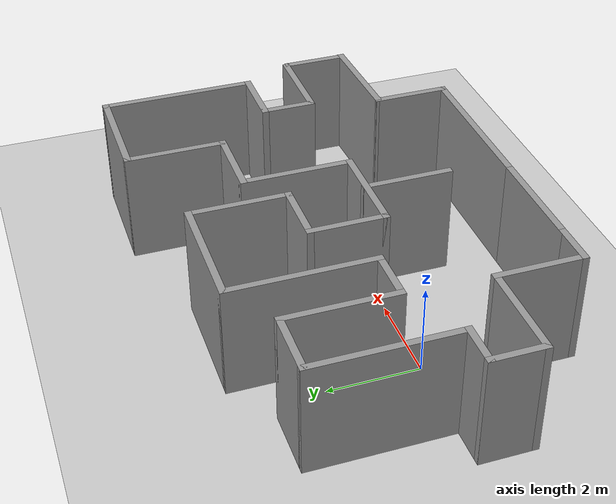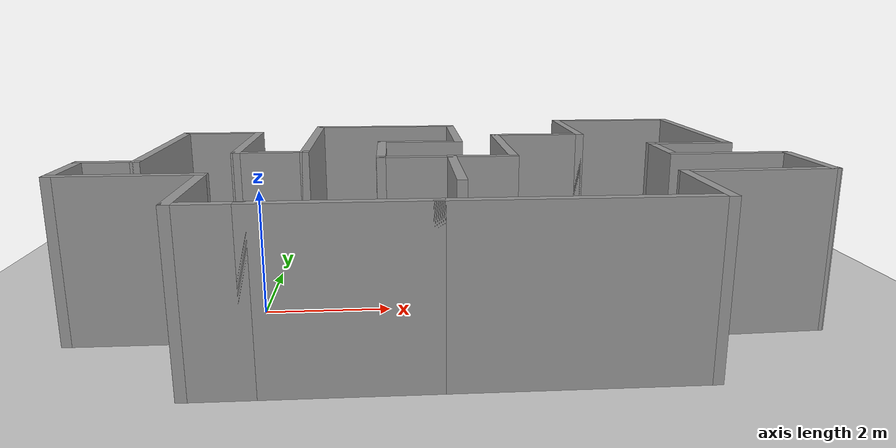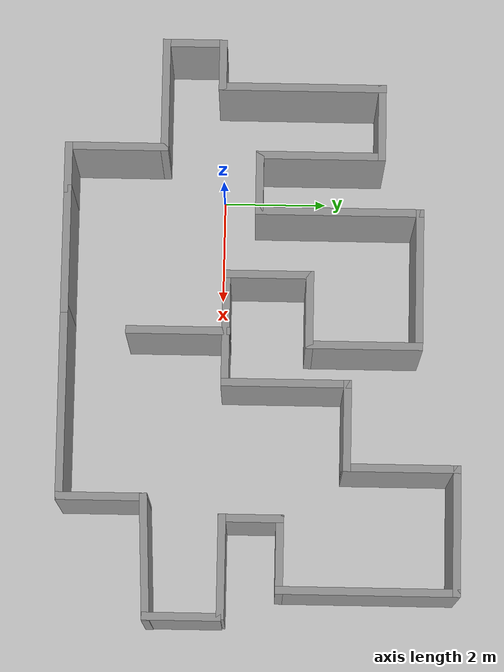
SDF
<sdf version="1.4">
  <world name="default">

    <scene>
      <ambient>0.4 0.4 0.4 1</ambient>
      <background>0.7 0.7 0.7 1</background>
      <shadows>true</shadows>
    </scene>

    <!-- A global light source -->
    <include>
      <uri>model://sun</uri>
    </include>

    <!-- A ground plane -->
    <include>
      <uri>model://ground_plane</uri>
    </include>

    <physics type="ode">
      <real_time_update_rate>1000.0</real_time_update_rate>
      <max_step_size>0.001</max_step_size>
      <real_time_factor>1</real_time_factor>
      <ode>
        <solver>
          <type>quick</type>
          <iters>150</iters>
          <precon_iters>0</precon_iters>
          <sor>1.400000</sor>
          <use_dynamic_moi_rescaling>1</use_dynamic_moi_rescaling>
        </solver>
        <constraints>
          <cfm>0.00001</cfm>
          <erp>0.2</erp>
          <contact_max_correcting_vel>2000.000000</contact_max_correcting_vel>
          <contact_surface_layer>0.01000</contact_surface_layer>
        </constraints>
      </ode>
    </physics>

    <model name='my_world'>
    <pose frame=''>2.92324 0.765 0 0 -0 0</pose>
    <link name='Wall_0'>
      <collision name='Wall_0_Collision'>
        <geometry>
          <box>
            <size>1 0.15 2.5</size>
          </box>
        </geometry>
        <pose frame=''>0 0 1.25 0 -0 0</pose>
      </collision>
      <visual name='Wall_0_Visual'>
        <pose frame=''>0 0 1.25 0 -0 0</pose>
        <geometry>
          <box>
            <size>1 0.15 2.5</size>
          </box>
        </geometry>
        <material>
          <script>
            <uri>file://media/materials/scripts/gazebo.material</uri>
            <name>Gazebo/Grey</name>
          </script>
          <ambient>1 1 1 1</ambient>
        </material>
        <meta>
          <layer>0</layer>
        </meta>
      </visual>
      <pose frame=''>-3.06824 -3.775 0 0 -0 3.14159</pose>
    </link>
    <link name='Wall_1'>
      <collision name='Wall_1_Collision'>
        <geometry>
          <box>
            <size>2 0.15 2.5</size>
          </box>
        </geometry>
        <pose frame=''>0 0 1.25 0 -0 0</pose>
      </collision>
      <visual name='Wall_1_Visual'>
        <pose frame=''>0 0 1.25 0 -0 0</pose>
        <geometry>
          <box>
            <size>2 0.15 2.5</size>
          </box>
        </geometry>
        <material>
          <script>
            <uri>file://media/materials/scripts/gazebo.material</uri>
            <name>Gazebo/Grey</name>
          </script>
          <ambient>1 1 1 1</ambient>
        </material>
        <meta>
          <layer>0</layer>
        </meta>
      </visual>
      <pose frame=''>-3.49324 -2.85 0 0 -0 1.5708</pose>
    </link>
    <link name='Wall_11'>
      <collision name='Wall_11_Collision'>
        <geometry>
          <box>
            <size>1.25 0.15 2.5</size>
          </box>
        </geometry>
        <pose frame=''>0 0 1.25 0 -0 0</pose>
      </collision>
      <visual name='Wall_11_Visual'>
        <pose frame=''>0 0 1.25 0 -0 0</pose>
        <geometry>
          <box>
            <size>1.25 0.15 2.5</size>
          </box>
        </geometry>
        <material>
          <script>
            <uri>file://media/materials/scripts/gazebo.material</uri>
            <name>Gazebo/Grey</name>
          </script>
          <ambient>1 1 1 1</ambient>
        </material>
        <meta>
          <layer>0</layer>
        </meta>
      </visual>
      <pose frame=''>-2.82324 -0.075 0 0 -0 0</pose>
    </link>
    <link name='Wall_12'>
      <collision name='Wall_12_Collision'>
        <geometry>
          <box>
            <size>3.25 0.15 2.5</size>
          </box>
        </geometry>
        <pose frame=''>0 0 1.25 0 -0 0</pose>
      </collision>
      <visual name='Wall_12_Visual'>
        <pose frame=''>0 0 1.25 0 -0 0</pose>
        <geometry>
          <box>
            <size>3.25 0.15 2.5</size>
          </box>
        </geometry>
        <material>
          <script>
            <uri>file://media/materials/scripts/gazebo.material</uri>
            <name>Gazebo/Grey</name>
          </script>
          <ambient>1 1 1 1</ambient>
        </material>
        <meta>
          <layer>0</layer>
        </meta>
      </visual>
      <pose frame=''>-2.27324 1.475 0 0 -0 1.5708</pose>
    </link>
    <link name='Wall_13'>
      <collision name='Wall_13_Collision'>
        <geometry>
          <box>
            <size>2.75 0.15 2.5</size>
          </box>
        </geometry>
        <pose frame=''>0 0 1.25 0 -0 0</pose>
      </collision>
      <visual name='Wall_13_Visual'>
        <pose frame=''>0 0 1.25 0 -0 0</pose>
        <geometry>
          <box>
            <size>2.75 0.15 2.5</size>
          </box>
        </geometry>
        <material>
          <script>
            <uri>file://media/materials/scripts/gazebo.material</uri>
            <name>Gazebo/Grey</name>
          </script>
          <ambient>1 1 1 1</ambient>
        </material>
        <meta>
          <layer>0</layer>
        </meta>
      </visual>
      <pose frame=''>-0.973242 3.025 0 0 -0 0</pose>
    </link>
    <link name='Wall_14'>
      <collision name='Wall_14_Collision'>
        <geometry>
          <box>
            <size>2.25 0.15 2.5</size>
          </box>
        </geometry>
        <pose frame=''>0 0 1.25 0 -0 0</pose>
      </collision>
      <visual name='Wall_14_Visual'>
        <pose frame=''>0 0 1.25 0 -0 0</pose>
        <geometry>
          <box>
            <size>2.25 0.15 2.5</size>
          </box>
        </geometry>
        <material>
          <script>
            <uri>file://media/materials/scripts/gazebo.material</uri>
            <name>Gazebo/Grey</name>
          </script>
          <ambient>1 1 1 1</ambient>
        </material>
        <meta>
          <layer>0</layer>
        </meta>
      </visual>
      <pose frame=''>0.326758 1.975 0 0 -0 -1.5708</pose>
    </link>
    <link name='Wall_15'>
      <collision name='Wall_15_Collision'>
        <geometry>
          <box>
            <size>1.5 0.15 2.5</size>
          </box>
        </geometry>
        <pose frame=''>0 0 1.25 0 -0 0</pose>
      </collision>
      <visual name='Wall_15_Visual'>
        <pose frame=''>0 0 1.25 0 -0 0</pose>
        <geometry>
          <box>
            <size>1.5 0.15 2.5</size>
          </box>
        </geometry>
        <material>
          <script>
            <uri>file://media/materials/scripts/gazebo.material</uri>
            <name>Gazebo/Grey</name>
          </script>
          <ambient>1 1 1 1</ambient>
        </material>
        <meta>
          <layer>0</layer>
        </meta>
      </visual>
      <pose frame=''>-0.348242 0.925 0 0 -0 3.14159</pose>
    </link>
    <link name='Wall_16'>
      <collision name='Wall_16_Collision'>
        <geometry>
          <box>
            <size>1.75 0.15 2.5</size>
          </box>
        </geometry>
        <pose frame=''>0 0 1.25 0 -0 0</pose>
      </collision>
      <visual name='Wall_16_Visual'>
        <pose frame=''>0 0 1.25 0 -0 0</pose>
        <geometry>
          <box>
            <size>1.75 0.15 2.5</size>
          </box>
        </geometry>
        <material>
          <script>
            <uri>file://media/materials/scripts/gazebo.material</uri>
            <name>Gazebo/Grey</name>
          </script>
          <ambient>1 1 1 1</ambient>
        </material>
        <meta>
          <layer>0</layer>
        </meta>
      </visual>
      <pose frame=''>-1.02324 0.125 0 0 -0 -1.5708</pose>
    </link>
    <link name='Wall_17'>
      <collision name='Wall_17_Collision'>
        <geometry>
          <box>
            <size>2.25 0.15 2.5</size>
          </box>
        </geometry>
        <pose frame=''>0 0 1.25 0 -0 0</pose>
      </collision>
      <visual name='Wall_17_Visual'>
        <pose frame=''>0 0 1.25 0 -0 0</pose>
        <geometry>
          <box>
            <size>2.25 0.15 2.5</size>
          </box>
        </geometry>
        <material>
          <script>
            <uri>file://media/materials/scripts/gazebo.material</uri>
            <name>Gazebo/Grey</name>
          </script>
          <ambient>1 1 1 1</ambient>
        </material>
        <meta>
          <layer>0</layer>
        </meta>
      </visual>
      <pose frame=''>0.026758 -0.675 0 0 -0 0</pose>
    </link>
    <link name='Wall_18'>
      <collision name='Wall_18_Collision'>
        <geometry>
          <box>
            <size>2.5 0.15 2.5</size>
          </box>
        </geometry>
        <pose frame=''>0 0 1.25 0 -0 0</pose>
      </collision>
      <visual name='Wall_18_Visual'>
        <pose frame=''>0 0 1.25 0 -0 0</pose>
        <geometry>
          <box>
            <size>2.5 0.15 2.5</size>
          </box>
        </geometry>
        <material>
          <script>
            <uri>file://media/materials/scripts/gazebo.material</uri>
            <name>Gazebo/Grey</name>
          </script>
          <ambient>1 1 1 1</ambient>
        </material>
        <meta>
          <layer>0</layer>
        </meta>
      </visual>
      <pose frame=''>1.07676 0.5 0 0 -0 1.5708</pose>
    </link>
    <link name='Wall_19'>
      <collision name='Wall_19_Collision'>
        <geometry>
          <box>
            <size>1.75 0.15 2.5</size>
          </box>
        </geometry>
        <pose frame=''>0 0 1.25 0 -0 0</pose>
      </collision>
      <visual name='Wall_19_Visual'>
        <pose frame=''>0 0 1.25 0 -0 0</pose>
        <geometry>
          <box>
            <size>1.75 0.15 2.5</size>
          </box>
        </geometry>
        <material>
          <script>
            <uri>file://media/materials/scripts/gazebo.material</uri>
            <name>Gazebo/Grey</name>
          </script>
          <ambient>1 1 1 1</ambient>
        </material>
        <meta>
          <layer>0</layer>
        </meta>
      </visual>
      <pose frame=''>1.87676 1.675 0 0 -0 0</pose>
    </link>
    <link name='Wall_2'>
      <collision name='Wall_2_Collision'>
        <geometry>
          <box>
            <size>2.23 0.15 2.5</size>
          </box>
        </geometry>
        <pose frame=''>0 0 1.25 0 -0 0</pose>
      </collision>
      <visual name='Wall_2_Visual'>
        <pose frame=''>0 0 1.25 0 -0 0</pose>
        <geometry>
          <box>
            <size>2.23 0.15 2.5</size>
          </box>
        </geometry>
        <material>
          <script>
            <uri>file://media/materials/scripts/gazebo.material</uri>
            <name>Gazebo/Grey</name>
          </script>
          <ambient>1 1 1 1</ambient>
        </material>
        <meta>
          <layer>0</layer>
        </meta>
      </visual>
      <pose frame=''>-4.53324 -1.925 0 0 -0 3.14159</pose>
    </link>
    <link name='Wall_20'>
      <collision name='Wall_20_Collision'>
        <geometry>
          <box>
            <size>2.25 0.15 2.5</size>
          </box>
        </geometry>
        <pose frame=''>0 0 1.25 0 -0 0</pose>
      </collision>
      <visual name='Wall_20_Visual'>
        <pose frame=''>0 0 1.25 0 -0 0</pose>
        <geometry>
          <box>
            <size>2.25 0.15 2.5</size>
          </box>
        </geometry>
        <material>
          <script>
            <uri>file://media/materials/scripts/gazebo.material</uri>
            <name>Gazebo/Grey</name>
          </script>
          <ambient>1 1 1 1</ambient>
        </material>
        <meta>
          <layer>0</layer>
        </meta>
      </visual>
      <pose frame=''>2.67676 2.725 0 0 -0 1.5708</pose>
    </link>
    <link name='Wall_21'>
      <collision name='Wall_21_Collision'>
        <geometry>
          <box>
            <size>2.5 0.15 2.5</size>
          </box>
        </geometry>
        <pose frame=''>0 0 1.25 0 -0 0</pose>
      </collision>
      <visual name='Wall_21_Visual'>
        <pose frame=''>0 0 1.25 0 -0 0</pose>
        <geometry>
          <box>
            <size>2.5 0.15 2.5</size>
          </box>
        </geometry>
        <material>
          <script>
            <uri>file://media/materials/scripts/gazebo.material</uri>
            <name>Gazebo/Grey</name>
          </script>
          <ambient>1 1 1 1</ambient>
        </material>
        <meta>
          <layer>0</layer>
        </meta>
      </visual>
      <pose frame=''>3.85176 3.775 0 0 -0 0</pose>
    </link>
    <link name='Wall_22'>
      <collision name='Wall_22_Collision'>
        <geometry>
          <box>
            <size>3.5 0.15 2.5</size>
          </box>
        </geometry>
        <pose frame=''>0 0 1.25 0 -0 0</pose>
      </collision>
      <visual name='Wall_22_Visual'>
        <pose frame=''>0 0 1.25 0 -0 0</pose>
        <geometry>
          <box>
            <size>3.5 0.15 2.5</size>
          </box>
        </geometry>
        <material>
          <script>
            <uri>file://media/materials/scripts/gazebo.material</uri>
            <name>Gazebo/Grey</name>
          </script>
          <ambient>1 1 1 1</ambient>
        </material>
        <meta>
          <layer>0</layer>
        </meta>
      </visual>
      <pose frame=''>5.02676 2.1 0 0 -0 -1.5708</pose>
    </link>
    <link name='Wall_23'>
      <collision name='Wall_23_Collision'>
        <geometry>
          <box>
            <size>1.5 0.15 2.5</size>
          </box>
        </geometry>
        <pose frame=''>0 0 1.25 0 -0 0</pose>
      </collision>
      <visual name='Wall_23_Visual'>
        <pose frame=''>0 0 1.25 0 -0 0</pose>
        <geometry>
          <box>
            <size>1.5 0.15 2.5</size>
          </box>
        </geometry>
        <material>
          <script>
            <uri>file://media/materials/scripts/gazebo.material</uri>
            <name>Gazebo/Grey</name>
          </script>
          <ambient>1 1 1 1</ambient>
        </material>
        <meta>
          <layer>0</layer>
        </meta>
      </visual>
      <pose frame=''>4.35176 0.425 0 0 -0 3.14159</pose>
    </link>
    <link name='Wall_24'>
      <collision name='Wall_24_Collision'>
        <geometry>
          <box>
            <size>1.25 0.15 2.5</size>
          </box>
        </geometry>
        <pose frame=''>0 0 1.25 0 -0 0</pose>
      </collision>
      <visual name='Wall_24_Visual'>
        <pose frame=''>0 0 1.25 0 -0 0</pose>
        <geometry>
          <box>
            <size>1.25 0.15 2.5</size>
          </box>
        </geometry>
        <material>
          <script>
            <uri>file://media/materials/scripts/gazebo.material</uri>
            <name>Gazebo/Grey</name>
          </script>
          <ambient>1 1 1 1</ambient>
        </material>
        <meta>
          <layer>0</layer>
        </meta>
      </visual>
      <pose frame=''>3.67676 -0.125 0 0 -0 -1.5708</pose>
    </link>
    <link name='Wall_25'>
      <collision name='Wall_25_Collision'>
        <geometry>
          <box>
            <size>2 0.15 2.5</size>
          </box>
        </geometry>
        <pose frame=''>0 0 1.25 0 -0 0</pose>
      </collision>
      <visual name='Wall_25_Visual'>
        <pose frame=''>0 0 1.25 0 -0 0</pose>
        <geometry>
          <box>
            <size>2 0.15 2.5</size>
          </box>
        </geometry>
        <material>
          <script>
            <uri>file://media/materials/scripts/gazebo.material</uri>
            <name>Gazebo/Grey</name>
          </script>
          <ambient>1 1 1 1</ambient>
        </material>
        <meta>
          <layer>0</layer>
        </meta>
      </visual>
      <pose frame=''>4.60176 -0.675 0 0 -0 0</pose>
    </link>
    <link name='Wall_31'>
      <collision name='Wall_31_Collision'>
        <geometry>
          <box>
            <size>2.5 0.15 2.5</size>
          </box>
        </geometry>
        <pose frame=''>0 0 1.25 0 -0 0</pose>
      </collision>
      <visual name='Wall_31_Visual'>
        <pose frame=''>0 0 1.25 0 -0 0</pose>
        <geometry>
          <box>
            <size>2.5 0.15 2.5</size>
          </box>
        </geometry>
        <material>
          <script>
            <uri>file://media/materials/scripts/gazebo.material</uri>
            <name>Gazebo/Grey</name>
          </script>
          <ambient>1 1 1 1</ambient>
        </material>
        <meta>
          <layer>0</layer>
        </meta>
      </visual>
      <pose frame=''>-1.46824 -3.775 0 0 -0 0</pose>
    </link>
    <link name='Wall_35'>
      <collision name='Wall_35_Collision'>
        <geometry>
          <box>
            <size>3.75 0.15 2.5</size>
          </box>
        </geometry>
        <pose frame=''>0 0 1.25 0 -0 0</pose>
      </collision>
      <visual name='Wall_35_Visual'>
        <pose frame=''>0 0 1.25 0 -0 0</pose>
        <geometry>
          <box>
            <size>3.75 0.15 2.5</size>
          </box>
        </geometry>
        <material>
          <script>
            <uri>file://media/materials/scripts/gazebo.material</uri>
            <name>Gazebo/Grey</name>
          </script>
          <ambient>1 1 1 1</ambient>
        </material>
        <meta>
          <layer>0</layer>
        </meta>
      </visual>
      <pose frame=''>1.50676 -3.775 0 0 -0 0</pose>
    </link>
    <link name='Wall_36'>
      <collision name='Wall_36_Collision'>
        <geometry>
          <box>
            <size>1.75 0.15 2.5</size>
          </box>
        </geometry>
        <pose frame=''>0 0 1.25 0 -0 0</pose>
      </collision>
      <visual name='Wall_36_Visual'>
        <pose frame=''>0 0 1.25 0 -0 0</pose>
        <geometry>
          <box>
            <size>1.75 0.15 2.5</size>
          </box>
        </geometry>
        <material>
          <script>
            <uri>file://media/materials/scripts/gazebo.material</uri>
            <name>Gazebo/Grey</name>
          </script>
          <ambient>1 1 1 1</ambient>
        </material>
        <meta>
          <layer>0</layer>
        </meta>
      </visual>
      <pose frame=''>3.30676 -2.975 0 0 -0 1.5708</pose>
    </link>
    <link name='Wall_37'>
      <collision name='Wall_37_Collision'>
        <geometry>
          <box>
            <size>2.41537 0.15 2.5</size>
          </box>
        </geometry>
        <pose frame=''>0 0 1.25 0 -0 0</pose>
      </collision>
      <visual name='Wall_37_Visual'>
        <pose frame=''>0 0 1.25 0 -0 0</pose>
        <geometry>
          <box>
            <size>2.41537 0.15 2.5</size>
          </box>
        </geometry>
        <material>
          <script>
            <uri>file://media/materials/scripts/gazebo.material</uri>
            <name>Gazebo/Grey</name>
          </script>
          <ambient>1 1 1 1</ambient>
        </material>
        <meta>
          <layer>0</layer>
        </meta>
      </visual>
      <pose frame=''>4.43851 -2.12912 0 0 -0 0.040521</pose>
    </link>
    <link name='Wall_38'>
      <collision name='Wall_38_Collision'>
        <geometry>
          <box>
            <size>1.5 0.15 2.5</size>
          </box>
        </geometry>
        <pose frame=''>0 0 1.25 0 -0 0</pose>
      </collision>
      <visual name='Wall_38_Visual'>
        <pose frame=''>0 0 1.25 0 -0 0</pose>
        <geometry>
          <box>
            <size>1.5 0.15 2.5</size>
          </box>
        </geometry>
        <material>
          <script>
            <uri>file://media/materials/scripts/gazebo.material</uri>
            <name>Gazebo/Grey</name>
          </script>
          <ambient>1 1 1 1</ambient>
        </material>
        <meta>
          <layer>0</layer>
        </meta>
      </visual>
      <pose frame=''>5.55497 -1.40823 0 0 -0 1.5708</pose>
    </link>
    <link name='Wall_43'>
      <collision name='Wall_43_Collision'>
        <geometry>
          <box>
            <size>2 0.15 2.5</size>
          </box>
        </geometry>
        <pose frame=''>0 0 1.25 0 -0 0</pose>
      </collision>
      <visual name='Wall_43_Visual'>
        <pose frame=''>0 0 1.25 0 -0 0</pose>
        <geometry>
          <box>
            <size>2 0.15 2.5</size>
          </box>
        </geometry>
        <material>
          <script>
            <uri>file://media/materials/scripts/gazebo.material</uri>
            <name>Gazebo/Grey</name>
          </script>
          <ambient>1 1 1 1</ambient>
        </material>
        <meta>
          <layer>0</layer>
        </meta>
      </visual>
      <pose frame=''>0.089669 -1.58999 0 0 -0 -1.5708</pose>
    </link>
    <link name='Wall_5'>
      <collision name='Wall_5_Collision'>
        <geometry>
          <box>
            <size>1.25 0.15 2.5</size>
          </box>
        </geometry>
        <pose frame=''>0 0 1.25 0 -0 0</pose>
      </collision>
      <visual name='Wall_5_Visual'>
        <pose frame=''>0 0 1.25 0 -0 0</pose>
        <geometry>
          <box>
            <size>1.25 0.15 2.5</size>
          </box>
        </geometry>
        <material>
          <script>
            <uri>file://media/materials/scripts/gazebo.material</uri>
            <name>Gazebo/Grey</name>
          </script>
          <ambient>1 1 1 1</ambient>
        </material>
        <meta>
          <layer>0</layer>
        </meta>
      </visual>
      <pose frame=''>-5.57324 -1.375 0 0 -0 1.5708</pose>
    </link>
    <link name='Wall_6'>
      <collision name='Wall_6_Collision'>
        <geometry>
          <box>
            <size>1 0.15 2.5</size>
          </box>
        </geometry>
        <pose frame=''>0 0 1.25 0 -0 0</pose>
      </collision>
      <visual name='Wall_6_Visual'>
        <pose frame=''>0 0 1.25 0 -0 0</pose>
        <geometry>
          <box>
            <size>1 0.15 2.5</size>
          </box>
        </geometry>
        <material>
          <script>
            <uri>file://media/materials/scripts/gazebo.material</uri>
            <name>Gazebo/Grey</name>
          </script>
          <ambient>1 1 1 1</ambient>
        </material>
        <meta>
          <layer>0</layer>
        </meta>
      </visual>
      <pose frame=''>-5.14824 -0.825 0 0 -0 0</pose>
    </link>
    <link name='Wall_7'>
      <collision name='Wall_7_Collision'>
        <geometry>
          <box>
            <size>3.25 0.15 2.5</size>
          </box>
        </geometry>
        <pose frame=''>0 0 1.25 0 -0 0</pose>
      </collision>
      <visual name='Wall_7_Visual'>
        <pose frame=''>0 0 1.25 0 -0 0</pose>
        <geometry>
          <box>
            <size>3.25 0.15 2.5</size>
          </box>
        </geometry>
        <material>
          <script>
            <uri>file://media/materials/scripts/gazebo.material</uri>
            <name>Gazebo/Grey</name>
          </script>
          <ambient>1 1 1 1</ambient>
        </material>
        <meta>
          <layer>0</layer>
        </meta>
      </visual>
      <pose frame=''>-4.72324 0.725 0 0 -0 1.5708</pose>
    </link>
    <link name='Wall_8'>
      <collision name='Wall_8_Collision'>
        <geometry>
          <box>
            <size>1.5 0.15 2.5</size>
          </box>
        </geometry>
        <pose frame=''>0 0 1.25 0 -0 0</pose>
      </collision>
      <visual name='Wall_8_Visual'>
        <pose frame=''>0 0 1.25 0 -0 0</pose>
        <geometry>
          <box>
            <size>1.5 0.15 2.5</size>
          </box>
        </geometry>
        <material>
          <script>
            <uri>file://media/materials/scripts/gazebo.material</uri>
            <name>Gazebo/Grey</name>
          </script>
          <ambient>1 1 1 1</ambient>
        </material>
        <meta>
          <layer>0</layer>
        </meta>
      </visual>
      <pose frame=''>-4.04824 2.275 0 0 -0 0</pose>
    </link>
    <link name='Wall_9'>
      <collision name='Wall_9_Collision'>
        <geometry>
          <box>
            <size>2.5 0.15 2.5</size>
          </box>
        </geometry>
        <pose frame=''>0 0 1.25 0 -0 0</pose>
      </collision>
      <visual name='Wall_9_Visual'>
        <pose frame=''>0 0 1.25 0 -0 0</pose>
        <geometry>
          <box>
            <size>2.5 0.15 2.5</size>
          </box>
        </geometry>
        <material>
          <script>
            <uri>file://media/materials/scripts/gazebo.material</uri>
            <name>Gazebo/Grey</name>
          </script>
          <ambient>1 1 1 1</ambient>
        </material>
        <meta>
          <layer>0</layer>
        </meta>
      </visual>
      <pose frame=''>-3.37324 1.1 0 0 -0 -1.5708</pose>
    </link>
    <static>1</static>
  </model>

  </world>
</sdf>
